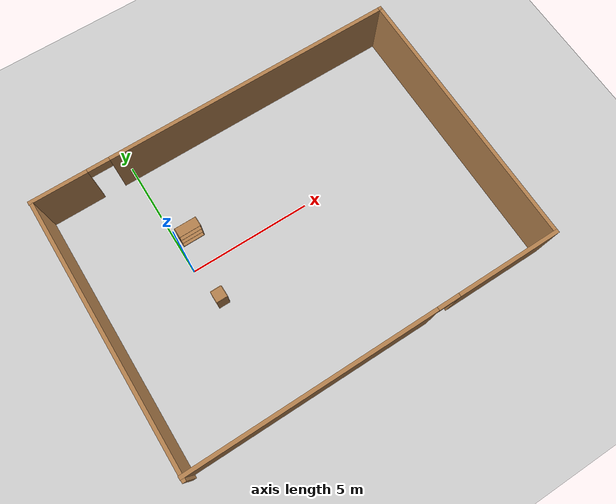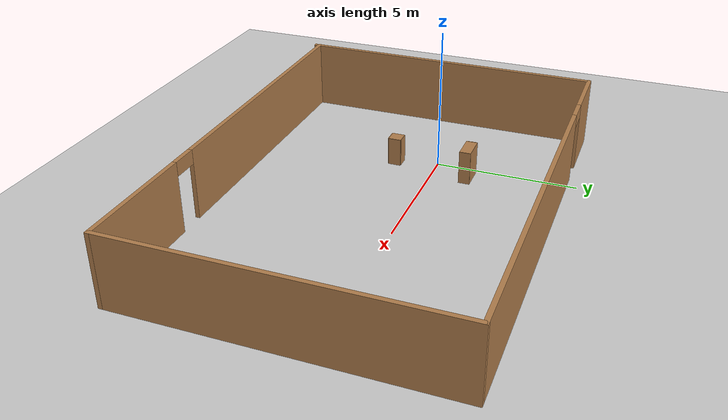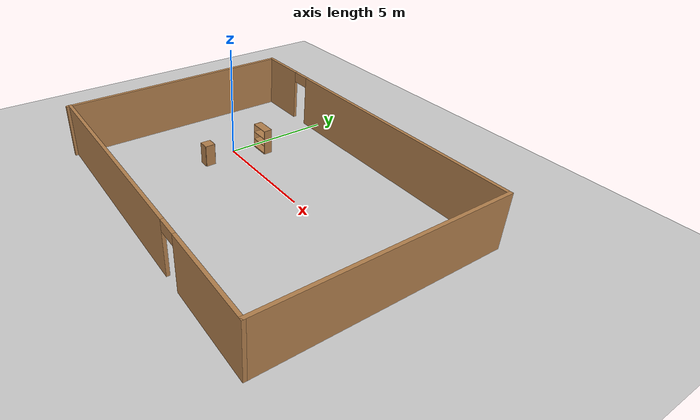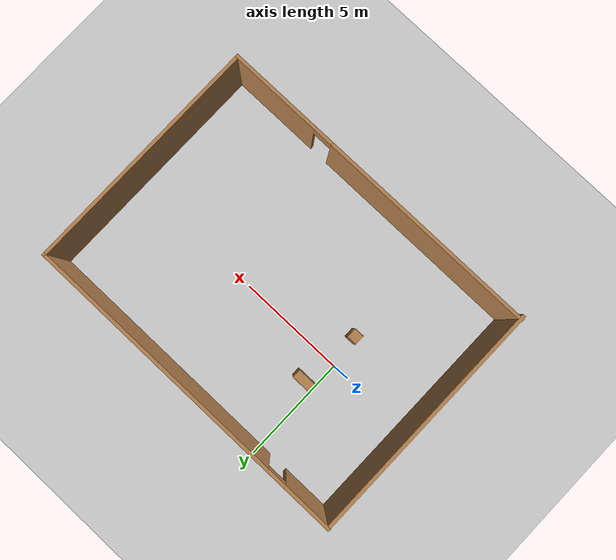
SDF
<sdf version="1.7">
 <world name="default">
  <light name="sun" type="directional">
   <pose>0 0 10 0 -0 0</pose>
   <diffuse>0.8 0.8 0.8 1</diffuse>
   <specular>0.2 0.2 0.2 1</specular>
   <attenuation>
    <range>1000</range>
    <constant>0.9</constant>
    <linear>0.01</linear>
    <quadratic>0.001</quadratic>
   </attenuation>
   <direction>-0.5 0.1 -0.9</direction>
   <spot><inner_angle>0</inner_angle><outer_angle>0</outer_angle><falloff>0</falloff></spot>
  </light>
  <model name="ground_plane">
   <static>1</static>
   <link name="link">
    <collision name="collision">
     <geometry><plane><normal>0 0 1</normal><size>100 100</size></plane></geometry>
     <surface>
      <contact><collide_bitmask>65535</collide_bitmask></contact>
      <friction><ode><mu>100</mu><mu2>50</mu2></ode></friction>
     </surface>
    </collision>
    <visual name="visual">
     <cast_shadows>0</cast_shadows>
     <geometry><plane><normal>0 0 1</normal><size>100 100</size></plane></geometry>
     <material>
      <script><uri>file://media/materials/scripts/gazebo.material</uri><name>Gazebo/Grey</name></script>
     </material>
    </visual>
   </link>
  </model>
  <gravity>0 0 -9.8</gravity>
  <magnetic_field>6e-06 2.3e-05 -4.2e-05</magnetic_field>
  <atmosphere type="adiabatic"/>
  <physics type="ode">
   <max_step_size>0.001</max_step_size>
   <real_time_factor>1</real_time_factor>
   <real_time_update_rate>1000</real_time_update_rate>
  </physics>
  <scene><ambient>0.4 0.4 0.4 1</ambient><background>0.7 0.7 0.7 1</background><shadows>1</shadows></scene>
  <audio><device>default</device></audio>
  <spherical_coordinates>
   <surface_model>EARTH_WGS84</surface_model>
   <latitude_deg>0</latitude_deg>
   <longitude_deg>0</longitude_deg>
   <elevation>0</elevation>
   <heading_deg>0</heading_deg>
  </spherical_coordinates>
  <model name="bookshelf">
   <static>1</static>
   <link name="link">
    <inertial><mass>1</mass></inertial>
    <collision name="back">
     <pose>0 0.005 0.6 0 -0 0</pose>
     <geometry><box><size>0.9 0.01 1.2</size></box></geometry>
    </collision>
    <visual name="visual1">
     <pose>0 0.005 0.6 0 -0 0</pose>
     <geometry><box><size>0.9 0.01 1.2</size></box></geometry>
     <material>
      <script><uri>file://media/materials/scripts/gazebo.material</uri><name>Gazebo/Wood</name></script>
     </material>
    </visual>
    <collision name="left_side">
     <pose>0.45 -0.195 0.6 0 -0 0</pose>
     <geometry><box><size>0.02 0.4 1.2</size></box></geometry>
    </collision>
    <visual name="visual2">
     <pose>0.45 -0.195 0.6 0 -0 0</pose>
     <geometry><box><size>0.02 0.4 1.2</size></box></geometry>
     <material>
      <script><uri>file://media/materials/scripts/gazebo.material</uri><name>Gazebo/Wood</name></script>
     </material>
    </visual>
    <collision name="right_side">
     <pose>-0.45 -0.195 0.6 0 -0 0</pose>
     <geometry><box><size>0.02 0.4 1.2</size></box></geometry>
    </collision>
    <visual name="visual3">
     <pose>-0.45 -0.195 0.6 0 -0 0</pose>
     <geometry><box><size>0.02 0.4 1.2</size></box></geometry>
     <material>
      <script><uri>file://media/materials/scripts/gazebo.material</uri><name>Gazebo/Wood</name></script>
     </material>
    </visual>
    <collision name="bottom">
     <pose>0 -0.195 0.03 0 -0 0</pose>
     <geometry><box><size>0.88 0.4 0.06</size></box></geometry>
    </collision>
    <visual name="visual4">
     <pose>0 -0.195 0.03 0 -0 0</pose>
     <geometry><box><size>0.88 0.4 0.06</size></box></geometry>
     <material>
      <script><uri>file://media/materials/scripts/gazebo.material</uri><name>Gazebo/Wood</name></script>
     </material>
    </visual>
    <collision name="top">
     <pose>0 -0.195 1.19 0 -0 0</pose>
     <geometry><box><size>0.88 0.4 0.02</size></box></geometry>
    </collision>
    <visual name="visual5">
     <pose>0 -0.195 1.19 0 -0 0</pose>
     <geometry><box><size>0.88 0.4 0.02</size></box></geometry>
     <material>
      <script><uri>file://media/materials/scripts/gazebo.material</uri><name>Gazebo/Wood</name></script>
     </material>
    </visual>
    <collision name="low_shelf">
     <pose>0 -0.195 0.43 0 -0 0</pose>
     <geometry><box><size>0.88 0.4 0.02</size></box></geometry>
    </collision>
    <visual name="visual6">
     <pose>0 -0.195 0.43 0 -0 0</pose>
     <geometry><box><size>0.88 0.4 0.02</size></box></geometry>
     <material>
      <script><uri>file://media/materials/scripts/gazebo.material</uri><name>Gazebo/Wood</name></script>
     </material>
    </visual>
    <collision name="high_shelf">
     <pose>0 -0.195 0.8 0 -0 0</pose>
     <geometry><box><size>0.88 0.4 0.02</size></box></geometry>
    </collision>
    <visual name="visual7">
     <pose>0 -0.195 0.8 0 -0 0</pose>
     <geometry><box><size>0.88 0.4 0.02</size></box></geometry>
     <material>
      <script><uri>file://media/materials/scripts/gazebo.material</uri><name>Gazebo/Wood</name></script>
     </material>
    </visual>
   </link>
   <pose>0.612409 1.45092 0.020432 0 -0 0</pose>
  </model>
  <model name="cabinet">
   <static>1</static>
   <link name="cabinet_bottom_plate">
    <inertial>
     <pose>0 0 -1 0 -0 0</pose>
     <inertia><ixx>2.05</ixx><ixy>0</ixy><ixz>0</ixz><iyy>2.05</iyy><iyz>0</iyz><izz>2.05</izz></inertia>
     <mass>25</mass>
    </inertial>
    <collision name="cabinet_bottom_plate_geom">
     <pose>0 0 0.01 0 -0 0</pose>
     <geometry><box><size>0.45 0.45 0.02</size></box></geometry>
    </collision>
    <visual name="cabinet_bottom_plate_geom_visual">
     <pose>0 0 0.01 0 -0 0</pose>
     <geometry><box><size>0.45 0.45 0.02</size></box></geometry>
     <material>
      <script><uri>file://media/materials/scripts/gazebo.material</uri><name>Gazebo/Wood</name></script>
     </material>
    </visual>
    <collision name="cabinet_bottom_plate_geom_cabinet_back_plate">
     <pose>0.235 0 0.51 0 -0 0</pose>
     <geometry><box><size>0.02 0.45 1.02</size></box></geometry>
    </collision>
    <visual name="cabinet_bottom_plate_geom_cabinet_back_plate_visual">
     <pose>0.235 0 0.51 0 -0 0</pose>
     <geometry><box><size>0.02 0.45 1.02</size></box></geometry>
     <material>
      <script><uri>file://media/materials/scripts/gazebo.material</uri><name>Gazebo/Wood</name></script>
     </material>
    </visual>
    <collision name="cabinet_bottom_plate_geom_cabinet_left_plate">
     <pose>0 0.235 0.51 0 -0 0</pose>
     <geometry><box><size>0.45 0.02 1.02</size></box></geometry>
    </collision>
    <visual name="cabinet_bottom_plate_geom_cabinet_left_plate_visual">
     <pose>0 0.235 0.51 0 -0 0</pose>
     <geometry><box><size>0.45 0.02 1.02</size></box></geometry>
     <material>
      <script><uri>file://media/materials/scripts/gazebo.material</uri><name>Gazebo/Wood</name></script>
     </material>
    </visual>
    <collision name="cabinet_bottom_plate_geom_cabinet_middle_plate">
     <pose>0 0 0.51 0 -0 0</pose>
     <geometry><box><size>0.45 0.45 0.02</size></box></geometry>
    </collision>
    <visual name="cabinet_bottom_plate_geom_cabinet_middle_plate_visual">
     <pose>0 0 0.51 0 -0 0</pose>
     <geometry><box><size>0.45 0.45 0.02</size></box></geometry>
     <material>
      <script><uri>file://media/materials/scripts/gazebo.material</uri><name>Gazebo/Wood</name></script>
     </material>
    </visual>
    <collision name="cabinet_bottom_plate_geom_cabinet_right_plate">
     <pose>0 -0.235 0.51 0 -0 0</pose>
     <geometry><box><size>0.45 0.02 1.02</size></box></geometry>
    </collision>
    <visual name="cabinet_bottom_plate_geom_cabinet_right_plate_visual">
     <pose>0 -0.235 0.51 0 -0 0</pose>
     <geometry><box><size>0.45 0.02 1.02</size></box></geometry>
     <material>
      <script><uri>file://media/materials/scripts/gazebo.material</uri><name>Gazebo/Wood</name></script>
     </material>
    </visual>
    <collision name="cabinet_bottom_plate_geom_cabinet_top_plate">
     <pose>0 0 1.01 0 -0 0</pose>
     <geometry><box><size>0.45 0.45 0.02</size></box></geometry>
    </collision>
    <visual name="cabinet_bottom_plate_geom_cabinet_top_plate_visual">
     <pose>0 0 1.01 0 -0 0</pose>
     <geometry><box><size>0.45 0.45 0.02</size></box></geometry>
     <material>
      <script><uri>file://media/materials/scripts/gazebo.material</uri><name>Gazebo/Wood</name></script>
     </material>
    </visual>
   </link>
   <pose>0.312835 -1.49555 0 0 -0 0</pose>
  </model>
  <model name="test">
   <pose>3.84474 -0.899943 0 0 -0 0</pose>
   <link name="Wall_0">
    <collision name="Wall_0_Collision">
     <geometry><box><size>11 0.15 2.5</size></box></geometry>
     <pose>0 0 1.25 0 -0 0</pose>
    </collision>
    <visual name="Wall_0_Visual">
     <pose>0 0 1.25 0 -0 0</pose>
     <geometry><box><size>11 0.15 2.5</size></box></geometry>
     <material>
      <script><uri>file://media/materials/scripts/gazebo.material</uri><name>Gazebo/Wood</name></script>
      <ambient>1 1 1 1</ambient>
     </material>
     <meta><layer>0</layer></meta>
    </visual>
    <pose>-7.53467 -0.062128 0 0 -0 -1.5708</pose>
   </link>
   <link name="Wall_6">
    <pose>-0 5.48713 0 0 -0 3.14159</pose>
    <visual name="Wall_6_Visual_0">
     <pose>-1.62026 0 1.25 0 -0 0</pose>
     <geometry><box><size>12.0095 0.15 2.5</size></box></geometry>
     <material>
      <script><uri>file://media/materials/scripts/gazebo.material</uri><name>Gazebo/Wood</name></script>
      <ambient>1 1 1 1</ambient>
     </material>
     <meta><layer>0</layer></meta>
    </visual>
    <collision name="Wall_6_Collision_0">
     <geometry><box><size>12.0095 0.15 2.5</size></box></geometry>
     <pose>-1.62026 0 1.25 0 -0 0</pose>
    </collision>
    <visual name="Wall_6_Visual_1">
     <pose>6.45474 0 1.25 0 -0 0</pose>
     <geometry><box><size>2.34052 0.15 2.5</size></box></geometry>
     <material>
      <script><uri>file://media/materials/scripts/gazebo.material</uri><name>Gazebo/Wood</name></script>
      <ambient>1 1 1 1</ambient>
     </material>
     <meta><layer>0</layer></meta>
    </visual>
    <collision name="Wall_6_Collision_1">
     <geometry><box><size>2.34052 0.15 2.5</size></box></geometry>
     <pose>6.45474 0 1.25 0 -0 0</pose>
    </collision>
    <visual name="Wall_6_Visual_2">
     <pose>4.83448 0 2.25 0 -0 0</pose>
     <geometry><box><size>0.9 0.15 0.5</size></box></geometry>
     <material>
      <script><uri>file://media/materials/scripts/gazebo.material</uri><name>Gazebo/Wood</name></script>
      <ambient>1 1 1 1</ambient>
     </material>
     <meta><layer>0</layer></meta>
    </visual>
    <collision name="Wall_6_Collision_2">
     <geometry><box><size>0.9 0.15 0.5</size></box></geometry>
     <pose>4.83448 0 2.25 0 -0 0</pose>
    </collision>
   </link>
   <link name="Wall_8">
    <collision name="Wall_8_Collision">
     <geometry><box><size>11 0.15 2.5</size></box></geometry>
     <pose>0 0 1.25 0 -0 0</pose>
    </collision>
    <visual name="Wall_8_Visual">
     <pose>0 0 1.25 0 -0 0</pose>
     <geometry><box><size>11 0.15 2.5</size></box></geometry>
     <material>
      <script><uri>file://media/materials/scripts/gazebo.material</uri><name>Gazebo/Wood</name></script>
      <ambient>1 1 1 1</ambient>
     </material>
     <meta><layer>0</layer></meta>
    </visual>
    <pose>7.55 0.062128 0 0 -0 -1.5708</pose>
   </link>
   <link name="Wall_9">
    <pose>-0 -5.36287 0 0 -0 3.14159</pose>
    <visual name="Wall_9_Visual_0">
     <pose>-5.48174 0 1.25 0 -0 0</pose>
     <geometry><box><size>4.28651 0.15 2.5</size></box></geometry>
     <material>
      <script><uri>file://media/materials/scripts/gazebo.material</uri><name>Gazebo/Wood</name></script>
      <ambient>1 1 1 1</ambient>
     </material>
     <meta><layer>0</layer></meta>
    </visual>
    <collision name="Wall_9_Collision_0">
     <geometry><box><size>4.28651 0.15 2.5</size></box></geometry>
     <pose>-5.48174 0 1.25 0 -0 0</pose>
    </collision>
    <visual name="Wall_9_Visual_1">
     <pose>2.59326 0 1.25 0 -0 0</pose>
     <geometry><box><size>10.0635 0.15 2.5</size></box></geometry>
     <material>
      <script><uri>file://media/materials/scripts/gazebo.material</uri><name>Gazebo/Wood</name></script>
      <ambient>1 1 1 1</ambient>
     </material>
     <meta><layer>0</layer></meta>
    </visual>
    <collision name="Wall_9_Collision_1">
     <geometry><box><size>10.0635 0.15 2.5</size></box></geometry>
     <pose>2.59326 0 1.25 0 -0 0</pose>
    </collision>
    <visual name="Wall_9_Visual_2">
     <pose>-2.88849 0 2.25 0 -0 0</pose>
     <geometry><box><size>0.9 0.15 0.5</size></box></geometry>
     <material>
      <script><uri>file://media/materials/scripts/gazebo.material</uri><name>Gazebo/Wood</name></script>
      <ambient>1 1 1 1</ambient>
     </material>
     <meta><layer>0</layer></meta>
    </visual>
    <collision name="Wall_9_Collision_2">
     <geometry><box><size>0.9 0.15 0.5</size></box></geometry>
     <pose>-2.88849 0 2.25 0 -0 0</pose>
    </collision>
   </link>
   <static>1</static>
  </model>
 </world>
</sdf>
